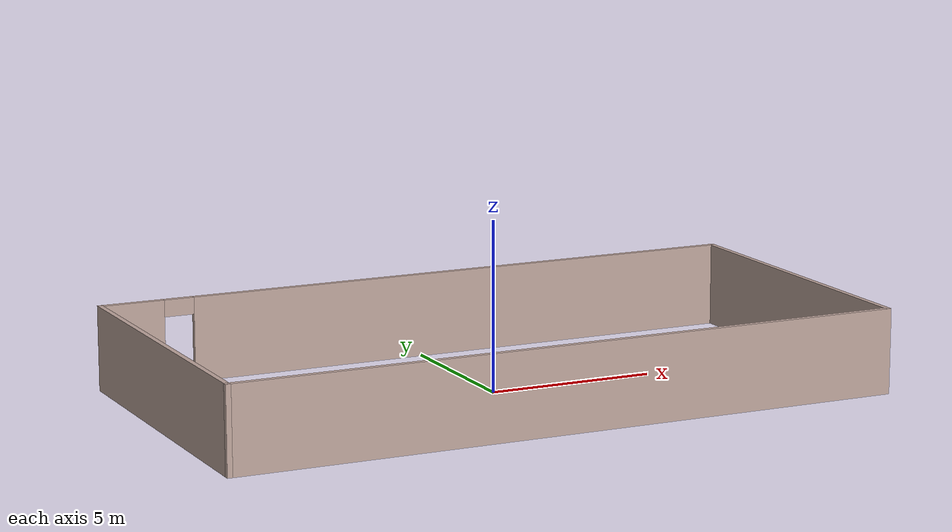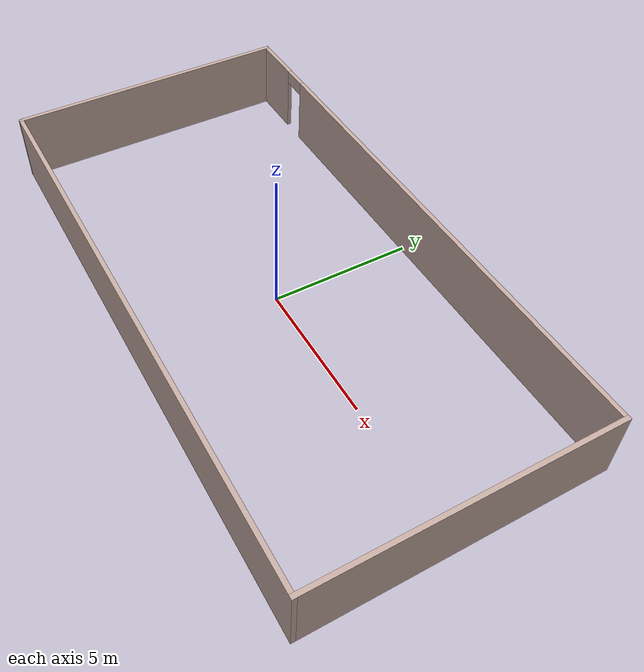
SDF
<?xml version='1.0'?>
<sdf version='1.6'>
  <model name='myBuilding'>
    <pose frame=''>0 0 0 0 -0 0</pose>
    <link name='Wall_0'>
      <pose frame=''>0 5 0 0 -0 0</pose>
      <visual name='Wall_0_Visual_0'>
        <pose frame=''>-9.09037 0 1.25 0 -0 0</pose>
        <geometry>
          <box>
            <size>1.96927 0.15 2.5</size>
          </box>
        </geometry>
        <material>
          <script>
            <uri>file://media/materials/scripts/gazebo.material</uri>
            <name>Gazebo/Grey</name>
          </script>
          <ambient>0.760784 0.662745 0.627451 1</ambient>
        </material>
        <meta>
          <layer>0</layer>
        </meta>
      </visual>
      <collision name='Wall_0_Collision_0'>
        <geometry>
          <box>
            <size>1.96927 0.15 2.5</size>
          </box>
        </geometry>
        <pose frame=''>-9.09037 0 1.25 0 -0 0</pose>
      </collision>
      <visual name='Wall_0_Visual_1'>
        <pose frame=''>1.43463 0 1.25 0 -0 0</pose>
        <geometry>
          <box>
            <size>17.2807 0.15 2.5</size>
          </box>
        </geometry>
        <material>
          <script>
            <uri>file://media/materials/scripts/gazebo.material</uri>
            <name>Gazebo/Grey</name>
          </script>
          <ambient>0.760784 0.662745 0.627451 1</ambient>
        </material>
        <meta>
          <layer>0</layer>
        </meta>
      </visual>
      <collision name='Wall_0_Collision_1'>
        <geometry>
          <box>
            <size>17.2807 0.15 2.5</size>
          </box>
        </geometry>
        <pose frame=''>1.43463 0 1.25 0 -0 0</pose>
      </collision>
      <visual name='Wall_0_Visual_2'>
        <pose frame=''>-7.65573 0 2.25 0 -0 0</pose>
        <geometry>
          <box>
            <size>0.9 0.15 0.5</size>
          </box>
        </geometry>
        <material>
          <script>
            <uri>file://media/materials/scripts/gazebo.material</uri>
            <name>Gazebo/Grey</name>
          </script>
          <ambient>0.760784 0.662745 0.627451 1</ambient>
        </material>
        <meta>
          <layer>0</layer>
        </meta>
      </visual>
      <collision name='Wall_0_Collision_2'>
        <geometry>
          <box>
            <size>0.9 0.15 0.5</size>
          </box>
        </geometry>
        <pose frame=''>-7.65573 0 2.25 0 -0 0</pose>
      </collision>
    </link>
    <link name='Wall_2'>
      <collision name='Wall_2_Collision'>
        <geometry>
          <box>
            <size>10.15 0.15 2.5</size>
          </box>
        </geometry>
        <pose frame=''>0 0 1.25 0 -0 0</pose>
      </collision>
      <visual name='Wall_2_Visual'>
        <pose frame=''>0 0 1.25 0 -0 0</pose>
        <geometry>
          <box>
            <size>10.15 0.15 2.5</size>
          </box>
        </geometry>
        <material>
          <script>
            <uri>file://media/materials/scripts/gazebo.material</uri>
            <name>Gazebo/Grey</name>
          </script>
          <ambient>0.760784 0.662745 0.627451 1</ambient>
        </material>
        <meta>
          <layer>0</layer>
        </meta>
      </visual>
      <pose frame=''>10 0 0 0 0 -1.5708</pose>
    </link>
    <link name='Wall_3'>
      <collision name='Wall_3_Collision'>
        <geometry>
          <box>
            <size>20.15 0.15 2.5</size>
          </box>
        </geometry>
        <pose frame=''>0 0 1.25 0 -0 0</pose>
      </collision>
      <visual name='Wall_3_Visual'>
        <pose frame=''>0 0 1.25 0 -0 0</pose>
        <geometry>
          <box>
            <size>20.15 0.15 2.5</size>
          </box>
        </geometry>
        <material>
          <script>
            <uri>file://media/materials/scripts/gazebo.material</uri>
            <name>Gazebo/Grey</name>
          </script>
          <ambient>0.760784 0.662745 0.627451 1</ambient>
        </material>
        <meta>
          <layer>0</layer>
        </meta>
      </visual>
      <pose frame=''>0 -5 0 0 -0 3.14159</pose>
    </link>
    <link name='Wall_4'>
      <collision name='Wall_4_Collision'>
        <geometry>
          <box>
            <size>10.15 0.15 2.5</size>
          </box>
        </geometry>
        <pose frame=''>0 0 1.25 0 -0 0</pose>
      </collision>
      <visual name='Wall_4_Visual'>
        <pose frame=''>0 0 1.25 0 -0 0</pose>
        <geometry>
          <box>
            <size>10.15 0.15 2.5</size>
          </box>
        </geometry>
        <material>
          <script>
            <uri>file://media/materials/scripts/gazebo.material</uri>
            <name>Gazebo/Grey</name>
          </script>
          <ambient>0.760784 0.662745 0.627451 1</ambient>
        </material>
        <meta>
          <layer>0</layer>
        </meta>
      </visual>
      <pose frame=''>-10 0 0 0 -0 1.5708</pose>
    </link>
    <static>1</static>
  </model>
</sdf>
